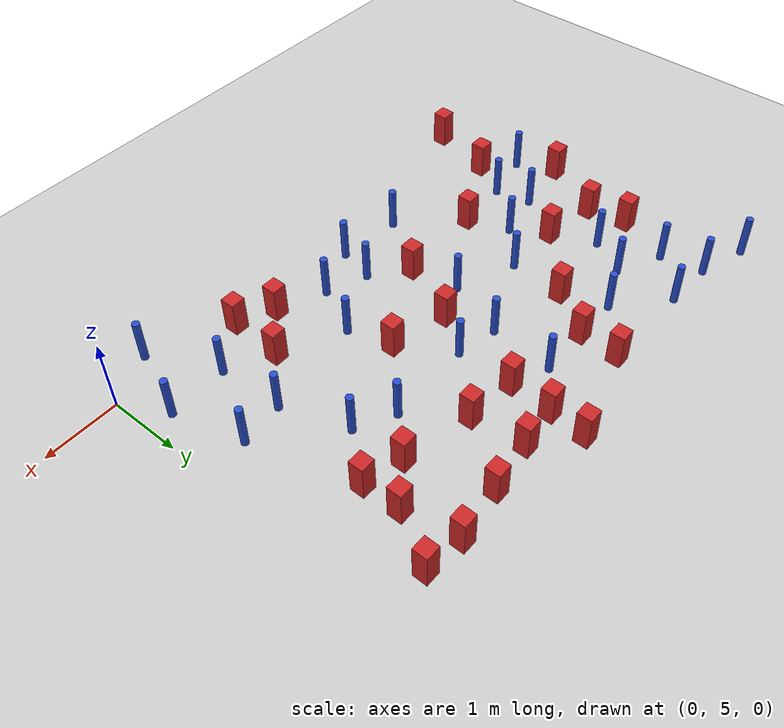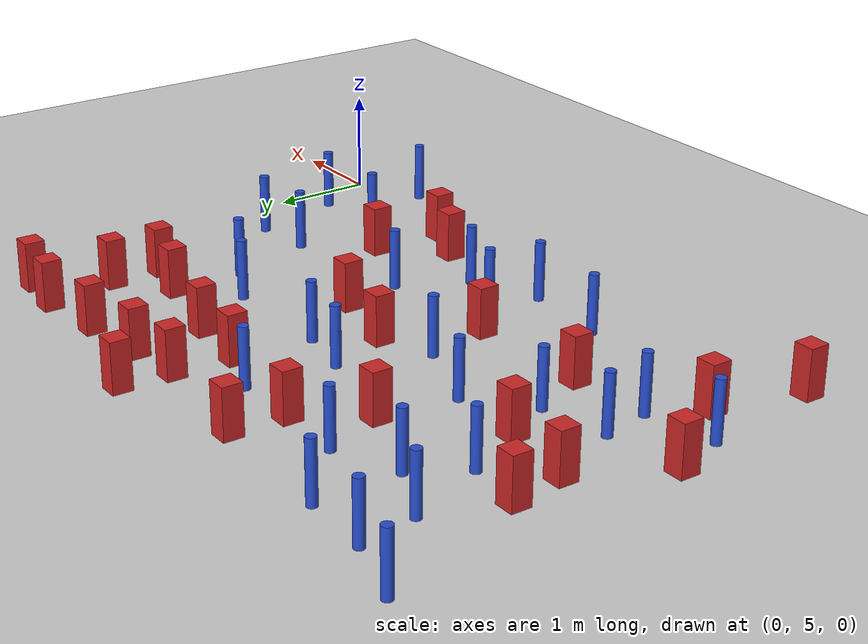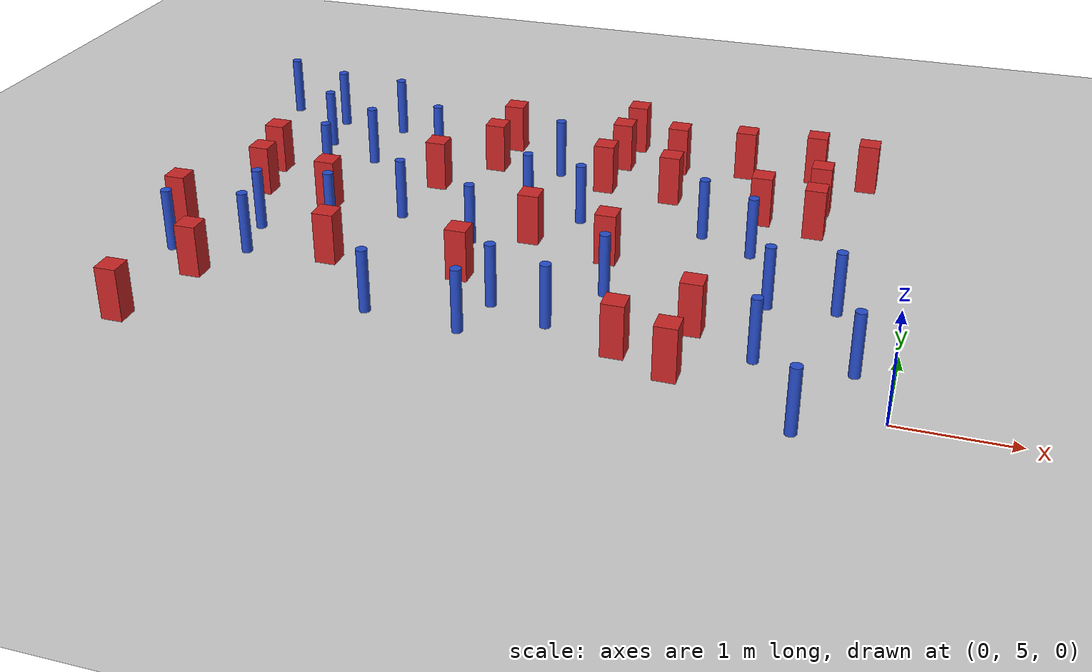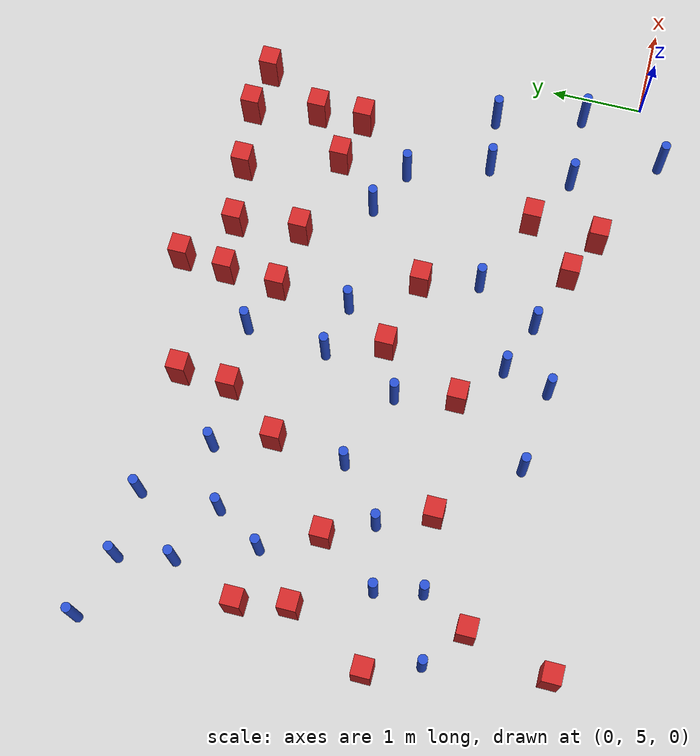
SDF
<sdf version="1.6">
 <world name="default">
  <model name="ground_plane">
   <static>1</static>
   <link name="link">
    <collision name="collision">
     <geometry><plane><normal>0 0 1</normal><size>100 100</size></plane></geometry>
     <surface><friction><ode><mu>100</mu><mu2>50</mu2></ode></friction></surface>
    </collision>
    <visual name="visual">
     <cast_shadows>0</cast_shadows>
     <geometry><plane><normal>0 0 1</normal><size>100 100</size></plane></geometry>
     <material>
      <ambient>1.0 1.0 1.0 1.0</ambient>
      <diffuse>0.8 0.8 0.8 1.0</diffuse>
      <specular>0.01 0.01 0.01 1.000000</specular>
     </material>
    </visual>
   </link>
  </model>
  <model name="pole_obstacle2">
   <static>true</static>
   <pose>-1.1636939648 6.49377656993 -3.09024884793e-07 -7.19054271912e-07 -2.11315075134e-07 -1.93935509265e-07</pose>
   <link name="link">
    <pose>0 0 0.3 0 -0 0</pose>
    <inertial>
     <mass>1</mass>
     <inertia><ixx>0.145833</ixx><ixy>0</ixy><ixz>0</ixz><iyy>0.145833</iyy><iyz>0</iyz><izz>0.125</izz></inertia>
    </inertial>
    <collision name="collision">
     <geometry><cylinder><radius>0.05</radius><length>.6</length></cylinder></geometry>
    </collision>
    <visual name="visual">
     <geometry><cylinder><radius>0.05</radius><length>.6</length></cylinder></geometry>
     <material>
      <script><name>Gazebo/Blue</name><uri>file://media/materials/scripts/gazebo.material</uri></script>
     </material>
    </visual>
   </link>
  </model>
  <model name="square_post_obstacle6">
   <static>true</static>
   <pose>-6.49289543125 7.902991326 -4.36207812815e-07 3.75137919937e-06 9.77721102514e-07 2.47381364184e-05</pose>
   <link name="link">
    <pose>0 0 0.25 0 -0 0</pose>
    <inertial>
     <mass>100</mass>
     <inertia>
      <ixx>0.166667</ixx>
      <ixy>0</ixy>
      <ixz>0</ixz>
      <iyy>0.166667</iyy>
      <iyz>0</iyz>
      <izz>0.166667</izz>
     </inertia>
    </inertial>
    <collision name="collision"><geometry><box><size>.2 .2 .5</size></box></geometry></collision>
    <visual name="visual">
     <geometry><box><size>.2 .2 .5</size></box></geometry>
     <material>
      <script><name>Gazebo/Red</name><uri>file://media/materials/scripts/gazebo.material</uri></script>
     </material>
    </visual>
   </link>
  </model>
  <model name="pole_obstacle9">
   <static>true</static>
   <pose>-5.62983167318 9.16247445387 -3.09024884793e-07 -7.19054271912e-07 -2.1131507513e-07 -1.93935509261e-07</pose>
   <link name="link">
    <pose>0 0 0.3 0 -0 0</pose>
    <inertial>
     <mass>1</mass>
     <inertia><ixx>0.145833</ixx><ixy>0</ixy><ixz>0</ixz><iyy>0.145833</iyy><iyz>0</iyz><izz>0.125</izz></inertia>
    </inertial>
    <collision name="collision">
     <geometry><cylinder><radius>0.05</radius><length>.6</length></cylinder></geometry>
    </collision>
    <visual name="visual">
     <geometry><cylinder><radius>0.05</radius><length>.6</length></cylinder></geometry>
     <material>
      <script><name>Gazebo/Blue</name><uri>file://media/materials/scripts/gazebo.material</uri></script>
     </material>
    </visual>
   </link>
  </model>
  <model name="square_post_obstacle15">
   <static>true</static>
   <pose>-3.0672144097 8.98723721834 -4.36207812815e-07 3.75137919937e-06 9.77721102514e-07 2.47381364184e-05</pose>
   <link name="link">
    <pose>0 0 0.25 0 -0 0</pose>
    <inertial>
     <mass>100</mass>
     <inertia>
      <ixx>0.166667</ixx>
      <ixy>0</ixy>
      <ixz>0</ixz>
      <iyy>0.166667</iyy>
      <iyz>0</iyz>
      <izz>0.166667</izz>
     </inertia>
    </inertial>
    <collision name="collision"><geometry><box><size>.2 .2 .5</size></box></geometry></collision>
    <visual name="visual">
     <geometry><box><size>.2 .2 .5</size></box></geometry>
     <material>
      <script><name>Gazebo/Red</name><uri>file://media/materials/scripts/gazebo.material</uri></script>
     </material>
    </visual>
   </link>
  </model>
  <model name="pole_obstacle25">
   <static>true</static>
   <pose>-2.89989605086 5.62652269784 -3.09024884793e-07 -7.19054271912e-07 -2.11315075134e-07 -1.93935509266e-07</pose>
   <link name="link">
    <pose>0 0 0.3 0 -0 0</pose>
    <inertial>
     <mass>1</mass>
     <inertia><ixx>0.145833</ixx><ixy>0</ixy><ixz>0</ixz><iyy>0.145833</iyy><iyz>0</iyz><izz>0.125</izz></inertia>
    </inertial>
    <collision name="collision">
     <geometry><cylinder><radius>0.05</radius><length>.6</length></cylinder></geometry>
    </collision>
    <visual name="visual">
     <geometry><cylinder><radius>0.05</radius><length>.6</length></cylinder></geometry>
     <material>
      <script><name>Gazebo/Blue</name><uri>file://media/materials/scripts/gazebo.material</uri></script>
     </material>
    </visual>
   </link>
  </model>
  <model name="square_post_obstacle25">
   <static>true</static>
   <pose>-0.586377763825 9.17148424783 -4.36207812815e-07 3.75137919937e-06 9.77721102514e-07 2.47381364184e-05</pose>
   <link name="link">
    <pose>0 0 0.25 0 -0 0</pose>
    <inertial>
     <mass>100</mass>
     <inertia>
      <ixx>0.166667</ixx>
      <ixy>0</ixy>
      <ixz>0</ixz>
      <iyy>0.166667</iyy>
      <iyz>0</iyz>
      <izz>0.166667</izz>
     </inertia>
    </inertial>
    <collision name="collision"><geometry><box><size>.2 .2 .5</size></box></geometry></collision>
    <visual name="visual">
     <geometry><box><size>.2 .2 .5</size></box></geometry>
     <material>
      <script><name>Gazebo/Red</name><uri>file://media/materials/scripts/gazebo.material</uri></script>
     </material>
    </visual>
   </link>
  </model>
  <model name="pole_obstacle40">
   <static>true</static>
   <pose>-2.5668011278 6.2961778245 -3.09024884793e-07 -7.19054271912e-07 -2.11315075134e-07 -1.93935509266e-07</pose>
   <link name="link">
    <pose>0 0 0.3 0 -0 0</pose>
    <inertial>
     <mass>1</mass>
     <inertia><ixx>0.145833</ixx><ixy>0</ixy><ixz>0</ixz><iyy>0.145833</iyy><iyz>0</iyz><izz>0.125</izz></inertia>
    </inertial>
    <collision name="collision">
     <geometry><cylinder><radius>0.05</radius><length>.6</length></cylinder></geometry>
    </collision>
    <visual name="visual">
     <geometry><cylinder><radius>0.05</radius><length>.6</length></cylinder></geometry>
     <material>
      <script><name>Gazebo/Blue</name><uri>file://media/materials/scripts/gazebo.material</uri></script>
     </material>
    </visual>
   </link>
  </model>
  <model name="square_post_obstacle34">
   <static>true</static>
   <pose>-0.969262403115 8.5101188159 -4.36207812815e-07 3.75137919937e-06 9.77721102514e-07 2.47381364184e-05</pose>
   <link name="link">
    <pose>0 0 0.25 0 -0 0</pose>
    <inertial>
     <mass>100</mass>
     <inertia>
      <ixx>0.166667</ixx>
      <ixy>0</ixy>
      <ixz>0</ixz>
      <iyy>0.166667</iyy>
      <iyz>0</iyz>
      <izz>0.166667</izz>
     </inertia>
    </inertial>
    <collision name="collision"><geometry><box><size>.2 .2 .5</size></box></geometry></collision>
    <visual name="visual">
     <geometry><box><size>.2 .2 .5</size></box></geometry>
     <material>
      <script><name>Gazebo/Red</name><uri>file://media/materials/scripts/gazebo.material</uri></script>
     </material>
    </visual>
   </link>
  </model>
  <model name="pole_obstacle52">
   <static>true</static>
   <pose>-5.38522458235 6.74010352743 -3.09024884793e-07 -7.19054271911e-07 -2.1131507516e-07 -1.93935509277e-07</pose>
   <link name="link">
    <pose>0 0 0.3 0 -0 0</pose>
    <inertial>
     <mass>1</mass>
     <inertia><ixx>0.145833</ixx><ixy>0</ixy><ixz>0</ixz><iyy>0.145833</iyy><iyz>0</iyz><izz>0.125</izz></inertia>
    </inertial>
    <collision name="collision">
     <geometry><cylinder><radius>0.05</radius><length>.6</length></cylinder></geometry>
    </collision>
    <visual name="visual">
     <geometry><cylinder><radius>0.05</radius><length>.6</length></cylinder></geometry>
     <material>
      <script><name>Gazebo/Blue</name><uri>file://media/materials/scripts/gazebo.material</uri></script>
     </material>
    </visual>
   </link>
  </model>
  <model name="pole_obstacle69">
   <static>true</static>
   <pose>-6.22485739289 8.61935832257 -3.09024884793e-07 -7.19054271912e-07 -2.1131507513e-07 -1.93935509261e-07</pose>
   <link name="link">
    <pose>0 0 0.3 0 -0 0</pose>
    <inertial>
     <mass>1</mass>
     <inertia><ixx>0.145833</ixx><ixy>0</ixy><ixz>0</ixz><iyy>0.145833</iyy><iyz>0</iyz><izz>0.125</izz></inertia>
    </inertial>
    <collision name="collision">
     <geometry><cylinder><radius>0.05</radius><length>.6</length></cylinder></geometry>
    </collision>
    <visual name="visual">
     <geometry><cylinder><radius>0.05</radius><length>.6</length></cylinder></geometry>
     <material>
      <script><name>Gazebo/Blue</name><uri>file://media/materials/scripts/gazebo.material</uri></script>
     </material>
    </visual>
   </link>
  </model>
  <model name="square_post_obstacle59">
   <static>true</static>
   <pose>-4.32279213672 8.58136387102 -4.36207812815e-07 3.75137919937e-06 9.77721102514e-07 2.47381364184e-05</pose>
   <link name="link">
    <pose>0 0 0.25 0 -0 0</pose>
    <inertial>
     <mass>100</mass>
     <inertia>
      <ixx>0.166667</ixx>
      <ixy>0</ixy>
      <ixz>0</ixz>
      <iyy>0.166667</iyy>
      <iyz>0</iyz>
      <izz>0.166667</izz>
     </inertia>
    </inertial>
    <collision name="collision"><geometry><box><size>.2 .2 .5</size></box></geometry></collision>
    <visual name="visual">
     <geometry><box><size>.2 .2 .5</size></box></geometry>
     <material>
      <script><name>Gazebo/Red</name><uri>file://media/materials/scripts/gazebo.material</uri></script>
     </material>
    </visual>
   </link>
  </model>
  <model name="pole_obstacle79">
   <static>true</static>
   <pose>-3.58506787334 5.33275245532 -3.09024884793e-07 -7.19054271912e-07 -2.11315075134e-07 -1.93935509266e-07</pose>
   <link name="link">
    <pose>0 0 0.3 0 -0 0</pose>
    <inertial>
     <mass>1</mass>
     <inertia><ixx>0.145833</ixx><ixy>0</ixy><ixz>0</ixz><iyy>0.145833</iyy><iyz>0</iyz><izz>0.125</izz></inertia>
    </inertial>
    <collision name="collision">
     <geometry><cylinder><radius>0.05</radius><length>.6</length></cylinder></geometry>
    </collision>
    <visual name="visual">
     <geometry><cylinder><radius>0.05</radius><length>.6</length></cylinder></geometry>
     <material>
      <script><name>Gazebo/Blue</name><uri>file://media/materials/scripts/gazebo.material</uri></script>
     </material>
    </visual>
   </link>
  </model>
  <model name="pole_obstacle88">
   <static>true</static>
   <pose>-0.688275233049 4.68017163884 -3.09024884793e-07 -7.19054271912e-07 -2.11315075129e-07 -1.93935509261e-07</pose>
   <link name="link">
    <pose>0 0 0.3 0 -0 0</pose>
    <inertial>
     <mass>1</mass>
     <inertia><ixx>0.145833</ixx><ixy>0</ixy><ixz>0</ixz><iyy>0.145833</iyy><iyz>0</iyz><izz>0.125</izz></inertia>
    </inertial>
    <collision name="collision">
     <geometry><cylinder><radius>0.05</radius><length>.6</length></cylinder></geometry>
    </collision>
    <visual name="visual">
     <geometry><cylinder><radius>0.05</radius><length>.6</length></cylinder></geometry>
     <material>
      <script><name>Gazebo/Blue</name><uri>file://media/materials/scripts/gazebo.material</uri></script>
     </material>
    </visual>
   </link>
  </model>
  <model name="square_post_obstacle78">
   <static>true</static>
   <pose>-6.21956855464 5.61123300974 -4.36207812815e-07 3.75137919937e-06 9.77721102514e-07 2.47381364184e-05</pose>
   <link name="link">
    <pose>0 0 0.25 0 -0 0</pose>
    <inertial>
     <mass>100</mass>
     <inertia>
      <ixx>0.166667</ixx>
      <ixy>0</ixy>
      <ixz>0</ixz>
      <iyy>0.166667</iyy>
      <iyz>0</iyz>
      <izz>0.166667</izz>
     </inertia>
    </inertial>
    <collision name="collision"><geometry><box><size>.2 .2 .5</size></box></geometry></collision>
    <visual name="visual">
     <geometry><box><size>.2 .2 .5</size></box></geometry>
     <material>
      <script><name>Gazebo/Red</name><uri>file://media/materials/scripts/gazebo.material</uri></script>
     </material>
    </visual>
   </link>
  </model>
  <model name="pole_obstacle95">
   <static>true</static>
   <pose>-1.45871466556 7.37641480322 -3.09024884793e-07 -7.19054271912e-07 -2.11315075134e-07 -1.93935509265e-07</pose>
   <link name="link">
    <pose>0 0 0.3 0 -0 0</pose>
    <inertial>
     <mass>1</mass>
     <inertia><ixx>0.145833</ixx><ixy>0</ixy><ixz>0</ixz><iyy>0.145833</iyy><iyz>0</iyz><izz>0.125</izz></inertia>
    </inertial>
    <collision name="collision">
     <geometry><cylinder><radius>0.05</radius><length>.6</length></cylinder></geometry>
    </collision>
    <visual name="visual">
     <geometry><cylinder><radius>0.05</radius><length>.6</length></cylinder></geometry>
     <material>
      <script><name>Gazebo/Blue</name><uri>file://media/materials/scripts/gazebo.material</uri></script>
     </material>
    </visual>
   </link>
  </model>
  <model name="square_post_obstacle88">
   <static>true</static>
   <pose>-2.70681723239 6.9216642255 -4.36207812815e-07 3.75137919937e-06 9.77721102514e-07 2.47381364184e-05</pose>
   <link name="link">
    <pose>0 0 0.25 0 -0 0</pose>
    <inertial>
     <mass>100</mass>
     <inertia>
      <ixx>0.166667</ixx>
      <ixy>0</ixy>
      <ixz>0</ixz>
      <iyy>0.166667</iyy>
      <iyz>0</iyz>
      <izz>0.166667</izz>
     </inertia>
    </inertial>
    <collision name="collision"><geometry><box><size>.2 .2 .5</size></box></geometry></collision>
    <visual name="visual">
     <geometry><box><size>.2 .2 .5</size></box></geometry>
     <material>
      <script><name>Gazebo/Red</name><uri>file://media/materials/scripts/gazebo.material</uri></script>
     </material>
    </visual>
   </link>
  </model>
  <model name="pole_obstacle96">
   <static>true</static>
   <pose>-3.6386214837 8.58833012479 -3.09024884848e-07 -7.19054271902e-07 -2.11315075199e-07 -1.93935509286e-07</pose>
   <link name="link">
    <pose>0 0 0.3 0 -0 0</pose>
    <inertial>
     <mass>1</mass>
     <inertia><ixx>0.145833</ixx><ixy>0</ixy><ixz>0</ixz><iyy>0.145833</iyy><iyz>0</iyz><izz>0.125</izz></inertia>
    </inertial>
    <collision name="collision">
     <geometry><cylinder><radius>0.05</radius><length>.6</length></cylinder></geometry>
    </collision>
    <visual name="visual">
     <geometry><cylinder><radius>0.05</radius><length>.6</length></cylinder></geometry>
     <material>
      <script><name>Gazebo/Blue</name><uri>file://media/materials/scripts/gazebo.material</uri></script>
     </material>
    </visual>
   </link>
  </model>
  <model name="square_post_obstacle90">
   <static>true</static>
   <pose>-1.81294295936 9.14454267821 -4.36207812815e-07 3.75137919937e-06 9.77721102514e-07 2.47381364184e-05</pose>
   <link name="link">
    <pose>0 0 0.25 0 -0 0</pose>
    <inertial>
     <mass>100</mass>
     <inertia>
      <ixx>0.166667</ixx>
      <ixy>0</ixy>
      <ixz>0</ixz>
      <iyy>0.166667</iyy>
      <iyz>0</iyz>
      <izz>0.166667</izz>
     </inertia>
    </inertial>
    <collision name="collision"><geometry><box><size>.2 .2 .5</size></box></geometry></collision>
    <visual name="visual">
     <geometry><box><size>.2 .2 .5</size></box></geometry>
     <material>
      <script><name>Gazebo/Red</name><uri>file://media/materials/scripts/gazebo.material</uri></script>
     </material>
    </visual>
   </link>
  </model>
  <model name="square_post_obstacle97">
   <static>true</static>
   <pose>-6.45820704529 4.72147405404 -4.36207812815e-07 3.75137919937e-06 9.77721102514e-07 2.47381364184e-05</pose>
   <link name="link">
    <pose>0 0 0.25 0 -0 0</pose>
    <inertial>
     <mass>100</mass>
     <inertia>
      <ixx>0.166667</ixx>
      <ixy>0</ixy>
      <ixz>0</ixz>
      <iyy>0.166667</iyy>
      <iyz>0</iyz>
      <izz>0.166667</izz>
     </inertia>
    </inertial>
    <collision name="collision"><geometry><box><size>.2 .2 .5</size></box></geometry></collision>
    <visual name="visual">
     <geometry><box><size>.2 .2 .5</size></box></geometry>
     <material>
      <script><name>Gazebo/Red</name><uri>file://media/materials/scripts/gazebo.material</uri></script>
     </material>
    </visual>
   </link>
  </model>
  <model name="pole_obstacle104">
   <static>true</static>
   <pose>-1.96032359742 7.63489741848 -3.09024884793e-07 -7.19054271912e-07 -2.1131507513e-07 -1.93935509262e-07</pose>
   <link name="link">
    <pose>0 0 0.3 0 -0 0</pose>
    <inertial>
     <mass>1</mass>
     <inertia><ixx>0.145833</ixx><ixy>0</ixy><ixz>0</ixz><iyy>0.145833</iyy><iyz>0</iyz><izz>0.125</izz></inertia>
    </inertial>
    <collision name="collision">
     <geometry><cylinder><radius>0.05</radius><length>.6</length></cylinder></geometry>
    </collision>
    <visual name="visual">
     <geometry><cylinder><radius>0.05</radius><length>.6</length></cylinder></geometry>
     <material>
      <script><name>Gazebo/Blue</name><uri>file://media/materials/scripts/gazebo.material</uri></script>
     </material>
    </visual>
   </link>
  </model>
  <model name="pole_obstacle108">
   <static>true</static>
   <pose>-6.05371493826 6.59771029976 -3.09024884793e-07 -7.19054271911e-07 -2.1131507516e-07 -1.93935509277e-07</pose>
   <link name="link">
    <pose>0 0 0.3 0 -0 0</pose>
    <inertial>
     <mass>1</mass>
     <inertia><ixx>0.145833</ixx><ixy>0</ixy><ixz>0</ixz><iyy>0.145833</iyy><iyz>0</iyz><izz>0.125</izz></inertia>
    </inertial>
    <collision name="collision">
     <geometry><cylinder><radius>0.05</radius><length>.6</length></cylinder></geometry>
    </collision>
    <visual name="visual">
     <geometry><cylinder><radius>0.05</radius><length>.6</length></cylinder></geometry>
     <material>
      <script><name>Gazebo/Blue</name><uri>file://media/materials/scripts/gazebo.material</uri></script>
     </material>
    </visual>
   </link>
  </model>
  <model name="pole_obstacle110">
   <static>true</static>
   <pose>-4.02476999885 6.88670873852 -3.09024884793e-07 -7.19054271911e-07 -2.11315075165e-07 -1.9393550928e-07</pose>
   <link name="link">
    <pose>0 0 0.3 0 -0 0</pose>
    <inertial>
     <mass>1</mass>
     <inertia><ixx>0.145833</ixx><ixy>0</ixy><ixz>0</ixz><iyy>0.145833</iyy><iyz>0</iyz><izz>0.125</izz></inertia>
    </inertial>
    <collision name="collision">
     <geometry><cylinder><radius>0.05</radius><length>.6</length></cylinder></geometry>
    </collision>
    <visual name="visual">
     <geometry><cylinder><radius>0.05</radius><length>.6</length></cylinder></geometry>
     <material>
      <script><name>Gazebo/Blue</name><uri>file://media/materials/scripts/gazebo.material</uri></script>
     </material>
    </visual>
   </link>
  </model>
  <model name="square_post_obstacle103">
   <static>true</static>
   <pose>-1.75343530101 5.17776460868 -4.36207812815e-07 3.75137919937e-06 9.77721102514e-07 2.47381364184e-05</pose>
   <link name="link">
    <pose>0 0 0.25 0 -0 0</pose>
    <inertial>
     <mass>100</mass>
     <inertia>
      <ixx>0.166667</ixx>
      <ixy>0</ixy>
      <ixz>0</ixz>
      <iyy>0.166667</iyy>
      <iyz>0</iyz>
      <izz>0.166667</izz>
     </inertia>
    </inertial>
    <collision name="collision"><geometry><box><size>.2 .2 .5</size></box></geometry></collision>
    <visual name="visual">
     <geometry><box><size>.2 .2 .5</size></box></geometry>
     <material>
      <script><name>Gazebo/Red</name><uri>file://media/materials/scripts/gazebo.material</uri></script>
     </material>
    </visual>
   </link>
  </model>
  <model name="square_post_obstacle108">
   <static>true</static>
   <pose>-3.11375692529 8.39990371966 -4.36207812815e-07 3.75137919937e-06 9.77721102514e-07 2.47381364184e-05</pose>
   <link name="link">
    <pose>0 0 0.25 0 -0 0</pose>
    <inertial>
     <mass>100</mass>
     <inertia>
      <ixx>0.166667</ixx>
      <ixy>0</ixy>
      <ixz>0</ixz>
      <iyy>0.166667</iyy>
      <iyz>0</iyz>
      <izz>0.166667</izz>
     </inertia>
    </inertial>
    <collision name="collision"><geometry><box><size>.2 .2 .5</size></box></geometry></collision>
    <visual name="visual">
     <geometry><box><size>.2 .2 .5</size></box></geometry>
     <material>
      <script><name>Gazebo/Red</name><uri>file://media/materials/scripts/gazebo.material</uri></script>
     </material>
    </visual>
   </link>
  </model>
  <model name="square_post_obstacle116">
   <static>true</static>
   <pose>-1.48544516305 8.12152211852 -4.36207812815e-07 3.75137919937e-06 9.77721102514e-07 2.47381364184e-05</pose>
   <link name="link">
    <pose>0 0 0.25 0 -0 0</pose>
    <inertial>
     <mass>100</mass>
     <inertia>
      <ixx>0.166667</ixx>
      <ixy>0</ixy>
      <ixz>0</ixz>
      <iyy>0.166667</iyy>
      <iyz>0</iyz>
      <izz>0.166667</izz>
     </inertia>
    </inertial>
    <collision name="collision"><geometry><box><size>.2 .2 .5</size></box></geometry></collision>
    <visual name="visual">
     <geometry><box><size>.2 .2 .5</size></box></geometry>
     <material>
      <script><name>Gazebo/Red</name><uri>file://media/materials/scripts/gazebo.material</uri></script>
     </material>
    </visual>
   </link>
  </model>
  <model name="square_post_obstacle121">
   <static>true</static>
   <pose>-3.49860216168 7.10704009538 -4.36207812815e-07 3.75137919937e-06 9.77721102514e-07 2.47381364184e-05</pose>
   <link name="link">
    <pose>0 0 0.25 0 -0 0</pose>
    <inertial>
     <mass>100</mass>
     <inertia>
      <ixx>0.166667</ixx>
      <ixy>0</ixy>
      <ixz>0</ixz>
      <iyy>0.166667</iyy>
      <iyz>0</iyz>
      <izz>0.166667</izz>
     </inertia>
    </inertial>
    <collision name="collision"><geometry><box><size>.2 .2 .5</size></box></geometry></collision>
    <visual name="visual">
     <geometry><box><size>.2 .2 .5</size></box></geometry>
     <material>
      <script><name>Gazebo/Red</name><uri>file://media/materials/scripts/gazebo.material</uri></script>
     </material>
    </visual>
   </link>
  </model>
  <model name="pole_obstacle125">
   <static>true</static>
   <pose>-4.84493598861 7.20744264739 -3.09024884793e-07 -7.19054271911e-07 -2.1131507516e-07 -1.93935509277e-07</pose>
   <link name="link">
    <pose>0 0 0.3 0 -0 0</pose>
    <inertial>
     <mass>1</mass>
     <inertia><ixx>0.145833</ixx><ixy>0</ixy><ixz>0</ixz><iyy>0.145833</iyy><iyz>0</iyz><izz>0.125</izz></inertia>
    </inertial>
    <collision name="collision">
     <geometry><cylinder><radius>0.05</radius><length>.6</length></cylinder></geometry>
    </collision>
    <visual name="visual">
     <geometry><cylinder><radius>0.05</radius><length>.6</length></cylinder></geometry>
     <material>
      <script><name>Gazebo/Blue</name><uri>file://media/materials/scripts/gazebo.material</uri></script>
     </material>
    </visual>
   </link>
  </model>
  <model name="pole_obstacle127">
   <static>true</static>
   <pose>-1.12874595569 5.5929155014 -3.09024884793e-07 -7.19054271912e-07 -2.11315075134e-07 -1.93935509265e-07</pose>
   <link name="link">
    <pose>0 0 0.3 0 -0 0</pose>
    <inertial>
     <mass>1</mass>
     <inertia><ixx>0.145833</ixx><ixy>0</ixy><ixz>0</ixz><iyy>0.145833</iyy><iyz>0</iyz><izz>0.125</izz></inertia>
    </inertial>
    <collision name="collision">
     <geometry><cylinder><radius>0.05</radius><length>.6</length></cylinder></geometry>
    </collision>
    <visual name="visual">
     <geometry><cylinder><radius>0.05</radius><length>.6</length></cylinder></geometry>
     <material>
      <script><name>Gazebo/Blue</name><uri>file://media/materials/scripts/gazebo.material</uri></script>
     </material>
    </visual>
   </link>
  </model>
  <model name="square_post_obstacle124">
   <static>true</static>
   <pose>-4.29217820584 9.12824278935 -4.36207812815e-07 3.75137919937e-06 9.77721102514e-07 2.47381364184e-05</pose>
   <link name="link">
    <pose>0 0 0.25 0 -0 0</pose>
    <inertial>
     <mass>100</mass>
     <inertia>
      <ixx>0.166667</ixx>
      <ixy>0</ixy>
      <ixz>0</ixz>
      <iyy>0.166667</iyy>
      <iyz>0</iyz>
      <izz>0.166667</izz>
     </inertia>
    </inertial>
    <collision name="collision"><geometry><box><size>.2 .2 .5</size></box></geometry></collision>
    <visual name="visual">
     <geometry><box><size>.2 .2 .5</size></box></geometry>
     <material>
      <script><name>Gazebo/Red</name><uri>file://media/materials/scripts/gazebo.material</uri></script>
     </material>
    </visual>
   </link>
  </model>
  <model name="pole_obstacle129">
   <static>true</static>
   <pose>-5.61423801472 8.32073306683 -3.09024884793e-07 -7.19054271912e-07 -2.1131507513e-07 -1.93935509261e-07</pose>
   <link name="link">
    <pose>0 0 0.3 0 -0 0</pose>
    <inertial>
     <mass>1</mass>
     <inertia><ixx>0.145833</ixx><ixy>0</ixy><ixz>0</ixz><iyy>0.145833</iyy><iyz>0</iyz><izz>0.125</izz></inertia>
    </inertial>
    <collision name="collision">
     <geometry><cylinder><radius>0.05</radius><length>.6</length></cylinder></geometry>
    </collision>
    <visual name="visual">
     <geometry><cylinder><radius>0.05</radius><length>.6</length></cylinder></geometry>
     <material>
      <script><name>Gazebo/Blue</name><uri>file://media/materials/scripts/gazebo.material</uri></script>
     </material>
    </visual>
   </link>
  </model>
  <model name="square_post_obstacle126">
   <static>true</static>
   <pose>-5.62651489807 7.23626387402 -4.36207812815e-07 3.75137919937e-06 9.77721102514e-07 2.47381364184e-05</pose>
   <link name="link">
    <pose>0 0 0.25 0 -0 0</pose>
    <inertial>
     <mass>100</mass>
     <inertia>
      <ixx>0.166667</ixx>
      <ixy>0</ixy>
      <ixz>0</ixz>
      <iyy>0.166667</iyy>
      <iyz>0</iyz>
      <izz>0.166667</izz>
     </inertia>
    </inertial>
    <collision name="collision"><geometry><box><size>.2 .2 .5</size></box></geometry></collision>
    <visual name="visual">
     <geometry><box><size>.2 .2 .5</size></box></geometry>
     <material>
      <script><name>Gazebo/Red</name><uri>file://media/materials/scripts/gazebo.material</uri></script>
     </material>
    </visual>
   </link>
  </model>
  <model name="pole_obstacle134">
   <static>true</static>
   <pose>-4.98069587195 8.5823416448 -3.09024884793e-07 -7.19054271912e-07 -2.1131507513e-07 -1.93935509261e-07</pose>
   <link name="link">
    <pose>0 0 0.3 0 -0 0</pose>
    <inertial>
     <mass>1</mass>
     <inertia><ixx>0.145833</ixx><ixy>0</ixy><ixz>0</ixz><iyy>0.145833</iyy><iyz>0</iyz><izz>0.125</izz></inertia>
    </inertial>
    <collision name="collision">
     <geometry><cylinder><radius>0.05</radius><length>.6</length></cylinder></geometry>
    </collision>
    <visual name="visual">
     <geometry><cylinder><radius>0.05</radius><length>.6</length></cylinder></geometry>
     <material>
      <script><name>Gazebo/Blue</name><uri>file://media/materials/scripts/gazebo.material</uri></script>
     </material>
    </visual>
   </link>
  </model>
  <model name="pole_obstacle138">
   <static>true</static>
   <pose>-3.71609996942 7.71304588813 -3.09024884793e-07 -7.19054271912e-07 -2.11315075134e-07 -1.93935509266e-07</pose>
   <link name="link">
    <pose>0 0 0.3 0 -0 0</pose>
    <inertial>
     <mass>1</mass>
     <inertia><ixx>0.145833</ixx><ixy>0</ixy><ixz>0</ixz><iyy>0.145833</iyy><iyz>0</iyz><izz>0.125</izz></inertia>
    </inertial>
    <collision name="collision">
     <geometry><cylinder><radius>0.05</radius><length>.6</length></cylinder></geometry>
    </collision>
    <visual name="visual">
     <geometry><cylinder><radius>0.05</radius><length>.6</length></cylinder></geometry>
     <material>
      <script><name>Gazebo/Blue</name><uri>file://media/materials/scripts/gazebo.material</uri></script>
     </material>
    </visual>
   </link>
  </model>
  <model name="square_post_obstacle139">
   <static>true</static>
   <pose>-2.42696473083 8.33001930898 -4.36207812815e-07 3.75137919937e-06 9.77721102514e-07 2.47381364184e-05</pose>
   <link name="link">
    <pose>0 0 0.25 0 -0 0</pose>
    <inertial>
     <mass>100</mass>
     <inertia>
      <ixx>0.166667</ixx>
      <ixy>0</ixy>
      <ixz>0</ixz>
      <iyy>0.166667</iyy>
      <iyz>0</iyz>
      <izz>0.166667</izz>
     </inertia>
    </inertial>
    <collision name="collision"><geometry><box><size>.2 .2 .5</size></box></geometry></collision>
    <visual name="visual">
     <geometry><box><size>.2 .2 .5</size></box></geometry>
     <material>
      <script><name>Gazebo/Red</name><uri>file://media/materials/scripts/gazebo.material</uri></script>
     </material>
    </visual>
   </link>
  </model>
  <model name="pole_obstacle145">
   <static>true</static>
   <pose>-3.45660491171 5.83047954437 -3.09024884848e-07 -7.19054271903e-07 -2.11315075193e-07 -1.93935509285e-07</pose>
   <link name="link">
    <pose>0 0 0.3 0 -0 0</pose>
    <inertial>
     <mass>1</mass>
     <inertia><ixx>0.145833</ixx><ixy>0</ixy><ixz>0</ixz><iyy>0.145833</iyy><iyz>0</iyz><izz>0.125</izz></inertia>
    </inertial>
    <collision name="collision">
     <geometry><cylinder><radius>0.05</radius><length>.6</length></cylinder></geometry>
    </collision>
    <visual name="visual">
     <geometry><cylinder><radius>0.05</radius><length>.6</length></cylinder></geometry>
     <material>
      <script><name>Gazebo/Blue</name><uri>file://media/materials/scripts/gazebo.material</uri></script>
     </material>
    </visual>
   </link>
  </model>
  <model name="square_post_obstacle140">
   <static>true</static>
   <pose>-5.15416222279 6.19077675005 -4.36207812815e-07 3.75137919937e-06 9.77721102514e-07 2.47381364184e-05</pose>
   <link name="link">
    <pose>0 0 0.25 0 -0 0</pose>
    <inertial>
     <mass>100</mass>
     <inertia>
      <ixx>0.166667</ixx>
      <ixy>0</ixy>
      <ixz>0</ixz>
      <iyy>0.166667</iyy>
      <iyz>0</iyz>
      <izz>0.166667</izz>
     </inertia>
    </inertial>
    <collision name="collision"><geometry><box><size>.2 .2 .5</size></box></geometry></collision>
    <visual name="visual">
     <geometry><box><size>.2 .2 .5</size></box></geometry>
     <material>
      <script><name>Gazebo/Red</name><uri>file://media/materials/scripts/gazebo.material</uri></script>
     </material>
    </visual>
   </link>
  </model>
  <model name="square_post_obstacle148">
   <static>true</static>
   <pose>-0.958305662529 7.99162861199 -4.36207812815e-07 3.75137919937e-06 9.77721102514e-07 2.47381364184e-05</pose>
   <link name="link">
    <pose>0 0 0.25 0 -0 0</pose>
    <inertial>
     <mass>100</mass>
     <inertia>
      <ixx>0.166667</ixx>
      <ixy>0</ixy>
      <ixz>0</ixz>
      <iyy>0.166667</iyy>
      <iyz>0</iyz>
      <izz>0.166667</izz>
     </inertia>
    </inertial>
    <collision name="collision"><geometry><box><size>.2 .2 .5</size></box></geometry></collision>
    <visual name="visual">
     <geometry><box><size>.2 .2 .5</size></box></geometry>
     <material>
      <script><name>Gazebo/Red</name><uri>file://media/materials/scripts/gazebo.material</uri></script>
     </material>
    </visual>
   </link>
  </model>
  <model name="pole_obstacle153">
   <static>true</static>
   <pose>-3.15035046833 7.60275059672 -3.09024884848e-07 -7.19054271903e-07 -2.11315075193e-07 -1.93935509285e-07</pose>
   <link name="link">
    <pose>0 0 0.3 0 -0 0</pose>
    <inertial>
     <mass>1</mass>
     <inertia><ixx>0.145833</ixx><ixy>0</ixy><ixz>0</ixz><iyy>0.145833</iyy><iyz>0</iyz><izz>0.125</izz></inertia>
    </inertial>
    <collision name="collision">
     <geometry><cylinder><radius>0.05</radius><length>.6</length></cylinder></geometry>
    </collision>
    <visual name="visual">
     <geometry><cylinder><radius>0.05</radius><length>.6</length></cylinder></geometry>
     <material>
      <script><name>Gazebo/Blue</name><uri>file://media/materials/scripts/gazebo.material</uri></script>
     </material>
    </visual>
   </link>
  </model>
  <model name="pole_obstacle155">
   <static>true</static>
   <pose>-6.32885814705 9.19513918449 -3.09024884793e-07 -7.19054271912e-07 -2.1131507513e-07 -1.93935509261e-07</pose>
   <link name="link">
    <pose>0 0 0.3 0 -0 0</pose>
    <inertial>
     <mass>1</mass>
     <inertia><ixx>0.145833</ixx><ixy>0</ixy><ixz>0</ixz><iyy>0.145833</iyy><iyz>0</iyz><izz>0.125</izz></inertia>
    </inertial>
    <collision name="collision">
     <geometry><cylinder><radius>0.05</radius><length>.6</length></cylinder></geometry>
    </collision>
    <visual name="visual">
     <geometry><cylinder><radius>0.05</radius><length>.6</length></cylinder></geometry>
     <material>
      <script><name>Gazebo/Blue</name><uri>file://media/materials/scripts/gazebo.material</uri></script>
     </material>
    </visual>
   </link>
  </model>
  <model name="square_post_obstacle152">
   <static>true</static>
   <pose>-1.70692539413 5.91820301468 -4.36207812815e-07 3.75137919937e-06 9.77721102514e-07 2.47381364184e-05</pose>
   <link name="link">
    <pose>0 0 0.25 0 -0 0</pose>
    <inertial>
     <mass>100</mass>
     <inertia>
      <ixx>0.166667</ixx>
      <ixy>0</ixy>
      <ixz>0</ixz>
      <iyy>0.166667</iyy>
      <iyz>0</iyz>
      <izz>0.166667</izz>
     </inertia>
    </inertial>
    <collision name="collision"><geometry><box><size>.2 .2 .5</size></box></geometry></collision>
    <visual name="visual">
     <geometry><box><size>.2 .2 .5</size></box></geometry>
     <material>
      <script><name>Gazebo/Red</name><uri>file://media/materials/scripts/gazebo.material</uri></script>
     </material>
    </visual>
   </link>
  </model>
  <model name="pole_obstacle160">
   <static>true</static>
   <pose>-6.6460422575 5.95704955752 -3.09024884793e-07 -7.19054271911e-07 -2.1131507516e-07 -1.93935509277e-07</pose>
   <link name="link">
    <pose>0 0 0.3 0 -0 0</pose>
    <inertial>
     <mass>1</mass>
     <inertia><ixx>0.145833</ixx><ixy>0</ixy><ixz>0</ixz><iyy>0.145833</iyy><iyz>0</iyz><izz>0.125</izz></inertia>
    </inertial>
    <collision name="collision">
     <geometry><cylinder><radius>0.05</radius><length>.6</length></cylinder></geometry>
    </collision>
    <visual name="visual">
     <geometry><cylinder><radius>0.05</radius><length>.6</length></cylinder></geometry>
     <material>
      <script><name>Gazebo/Blue</name><uri>file://media/materials/scripts/gazebo.material</uri></script>
     </material>
    </visual>
   </link>
  </model>
  <model name="square_post_obstacle156">
   <static>true</static>
   <pose>-4.75307223829 7.98685351804 -4.36207812815e-07 3.75137919937e-06 9.77721102514e-07 2.47381364184e-05</pose>
   <link name="link">
    <pose>0 0 0.25 0 -0 0</pose>
    <inertial>
     <mass>100</mass>
     <inertia>
      <ixx>0.166667</ixx>
      <ixy>0</ixy>
      <ixz>0</ixz>
      <iyy>0.166667</iyy>
      <iyz>0</iyz>
      <izz>0.166667</izz>
     </inertia>
    </inertial>
    <collision name="collision"><geometry><box><size>.2 .2 .5</size></box></geometry></collision>
    <visual name="visual">
     <geometry><box><size>.2 .2 .5</size></box></geometry>
     <material>
      <script><name>Gazebo/Red</name><uri>file://media/materials/scripts/gazebo.material</uri></script>
     </material>
    </visual>
   </link>
  </model>
  <model name="square_post_obstacle160">
   <static>true</static>
   <pose>-6.8393491578 6.50588038459 -4.36207812815e-07 3.75137919937e-06 9.77721102514e-07 2.47381364184e-05</pose>
   <link name="link">
    <pose>0 0 0.25 0 -0 0</pose>
    <inertial>
     <mass>100</mass>
     <inertia>
      <ixx>0.166667</ixx>
      <ixy>0</ixy>
      <ixz>0</ixz>
      <iyy>0.166667</iyy>
      <iyz>0</iyz>
      <izz>0.166667</izz>
     </inertia>
    </inertial>
    <collision name="collision"><geometry><box><size>.2 .2 .5</size></box></geometry></collision>
    <visual name="visual">
     <geometry><box><size>.2 .2 .5</size></box></geometry>
     <material>
      <script><name>Gazebo/Red</name><uri>file://media/materials/scripts/gazebo.material</uri></script>
     </material>
    </visual>
   </link>
  </model>
  <model name="pole_obstacle168">
   <static>true</static>
   <pose>-0.568810162399 6.55825034691 -3.09024884793e-07 -7.19054271912e-07 -2.11315075129e-07 -1.93935509261e-07</pose>
   <link name="link">
    <pose>0 0 0.3 0 -0 0</pose>
    <inertial>
     <mass>1</mass>
     <inertia><ixx>0.145833</ixx><ixy>0</ixy><ixz>0</ixz><iyy>0.145833</iyy><iyz>0</iyz><izz>0.125</izz></inertia>
    </inertial>
    <collision name="collision">
     <geometry><cylinder><radius>0.05</radius><length>.6</length></cylinder></geometry>
    </collision>
    <visual name="visual">
     <geometry><cylinder><radius>0.05</radius><length>.6</length></cylinder></geometry>
     <material>
      <script><name>Gazebo/Blue</name><uri>file://media/materials/scripts/gazebo.material</uri></script>
     </material>
    </visual>
   </link>
  </model>
  <model name="square_post_obstacle168">
   <static>true</static>
   <pose>-3.89612030402 6.24117873689 -4.36207812815e-07 3.75137919937e-06 9.77721102514e-07 2.47381364184e-05</pose>
   <link name="link">
    <pose>0 0 0.25 0 -0 0</pose>
    <inertial>
     <mass>100</mass>
     <inertia>
      <ixx>0.166667</ixx>
      <ixy>0</ixy>
      <ixz>0</ixz>
      <iyy>0.166667</iyy>
      <iyz>0</iyz>
      <izz>0.166667</izz>
     </inertia>
    </inertial>
    <collision name="collision"><geometry><box><size>.2 .2 .5</size></box></geometry></collision>
    <visual name="visual">
     <geometry><box><size>.2 .2 .5</size></box></geometry>
     <material>
      <script><name>Gazebo/Red</name><uri>file://media/materials/scripts/gazebo.material</uri></script>
     </material>
    </visual>
   </link>
  </model>
  <model name="pole_obstacle170">
   <static>true</static>
   <pose>-4.46473498533 5.41871343945 -3.09024884793e-07 -7.19054271911e-07 -2.1131507516e-07 -1.93935509277e-07</pose>
   <link name="link">
    <pose>0 0 0.3 0 -0 0</pose>
    <inertial>
     <mass>1</mass>
     <inertia><ixx>0.145833</ixx><ixy>0</ixy><ixz>0</ixz><iyy>0.145833</iyy><iyz>0</iyz><izz>0.125</izz></inertia>
    </inertial>
    <collision name="collision">
     <geometry><cylinder><radius>0.05</radius><length>.6</length></cylinder></geometry>
    </collision>
    <visual name="visual">
     <geometry><cylinder><radius>0.05</radius><length>.6</length></cylinder></geometry>
     <material>
      <script><name>Gazebo/Blue</name><uri>file://media/materials/scripts/gazebo.material</uri></script>
     </material>
    </visual>
   </link>
  </model>
  <model name="pole_obstacle171">
   <static>true</static>
   <pose>-6.99791180692 9.40511679246 -3.09024884793e-07 -7.19054271912e-07 -2.1131507513e-07 -1.93935509261e-07</pose>
   <link name="link">
    <pose>0 0 0.3 0 -0 0</pose>
    <inertial>
     <mass>1</mass>
     <inertia><ixx>0.145833</ixx><ixy>0</ixy><ixz>0</ixz><iyy>0.145833</iyy><iyz>0</iyz><izz>0.125</izz></inertia>
    </inertial>
    <collision name="collision">
     <geometry><cylinder><radius>0.05</radius><length>.6</length></cylinder></geometry>
    </collision>
    <visual name="visual">
     <geometry><cylinder><radius>0.05</radius><length>.6</length></cylinder></geometry>
     <material>
      <script><name>Gazebo/Blue</name><uri>file://media/materials/scripts/gazebo.material</uri></script>
     </material>
    </visual>
   </link>
  </model>
  <model name="square_post_obstacle173">
   <static>true</static>
   <pose>-1.10619603486 9.23671790561 -4.36207812815e-07 3.75137919937e-06 9.77721102514e-07 2.47381364184e-05</pose>
   <link name="link">
    <pose>0 0 0.25 0 -0 0</pose>
    <inertial>
     <mass>100</mass>
     <inertia>
      <ixx>0.166667</ixx>
      <ixy>0</ixy>
      <ixz>0</ixz>
      <iyy>0.166667</iyy>
      <iyz>0</iyz>
      <izz>0.166667</izz>
     </inertia>
    </inertial>
    <collision name="collision"><geometry><box><size>.2 .2 .5</size></box></geometry></collision>
    <visual name="visual">
     <geometry><box><size>.2 .2 .5</size></box></geometry>
     <material>
      <script><name>Gazebo/Red</name><uri>file://media/materials/scripts/gazebo.material</uri></script>
     </material>
    </visual>
   </link>
  </model>
  <model name="pole_obstacle182">
   <static>true</static>
   <pose>-5.95101535095 6.1061664488 -3.09024884793e-07 -7.19054271911e-07 -2.1131507516e-07 -1.93935509277e-07</pose>
   <link name="link">
    <pose>0 0 0.3 0 -0 0</pose>
    <inertial>
     <mass>1</mass>
     <inertia><ixx>0.145833</ixx><ixy>0</ixy><ixz>0</ixz><iyy>0.145833</iyy><iyz>0</iyz><izz>0.125</izz></inertia>
    </inertial>
    <collision name="collision">
     <geometry><cylinder><radius>0.05</radius><length>.6</length></cylinder></geometry>
    </collision>
    <visual name="visual">
     <geometry><cylinder><radius>0.05</radius><length>.6</length></cylinder></geometry>
     <material>
      <script><name>Gazebo/Blue</name><uri>file://media/materials/scripts/gazebo.material</uri></script>
     </material>
    </visual>
   </link>
  </model>
  <model name="square_post_obstacle187">
   <static>true</static>
   <pose>-2.23939158135 5.39289469221 -4.36207812815e-07 3.75137919937e-06 9.77721102514e-07 2.47381364184e-05</pose>
   <link name="link">
    <pose>0 0 0.25 0 -0 0</pose>
    <inertial>
     <mass>100</mass>
     <inertia>
      <ixx>0.166667</ixx>
      <ixy>0</ixy>
      <ixz>0</ixz>
      <iyy>0.166667</iyy>
      <iyz>0</iyz>
      <izz>0.166667</izz>
     </inertia>
    </inertial>
    <collision name="collision"><geometry><box><size>.2 .2 .5</size></box></geometry></collision>
    <visual name="visual">
     <geometry><box><size>.2 .2 .5</size></box></geometry>
     <material>
      <script><name>Gazebo/Red</name><uri>file://media/materials/scripts/gazebo.material</uri></script>
     </material>
    </visual>
   </link>
  </model>
  <model name="square_post_obstacle196">
   <static>true</static>
   <pose>-6.39413525471 7.36159227211 -4.36207812815e-07 3.75137919937e-06 9.77721102514e-07 2.47381364184e-05</pose>
   <link name="link">
    <pose>0 0 0.25 0 -0 0</pose>
    <inertial>
     <mass>100</mass>
     <inertia>
      <ixx>0.166667</ixx>
      <ixy>0</ixy>
      <ixz>0</ixz>
      <iyy>0.166667</iyy>
      <iyz>0</iyz>
      <izz>0.166667</izz>
     </inertia>
    </inertial>
    <collision name="collision"><geometry><box><size>.2 .2 .5</size></box></geometry></collision>
    <visual name="visual">
     <geometry><box><size>.2 .2 .5</size></box></geometry>
     <material>
      <script><name>Gazebo/Red</name><uri>file://media/materials/scripts/gazebo.material</uri></script>
     </material>
    </visual>
   </link>
  </model>
  <model name="square_post_obstacle200">
   <static>true</static>
   <pose>-2.49809443411 9.04834927602 -4.36207812815e-07 3.75137919937e-06 9.77721102514e-07 2.47381364184e-05</pose>
   <link name="link">
    <pose>0 0 0.25 0 -0 0</pose>
    <inertial>
     <mass>100</mass>
     <inertia>
      <ixx>0.166667</ixx>
      <ixy>0</ixy>
      <ixz>0</ixz>
      <iyy>0.166667</iyy>
      <iyz>0</iyz>
      <izz>0.166667</izz>
     </inertia>
    </inertial>
    <collision name="collision"><geometry><box><size>.2 .2 .5</size></box></geometry></collision>
    <visual name="visual">
     <geometry><box><size>.2 .2 .5</size></box></geometry>
     <material>
      <script><name>Gazebo/Red</name><uri>file://media/materials/scripts/gazebo.material</uri></script>
     </material>
    </visual>
   </link>
  </model>
  <model name="pole_obstacle194">
   <static>true</static>
   <pose>-5.91331431522 7.82579938131 -3.09024884793e-07 -7.19054271911e-07 -2.1131507516e-07 -1.93935509277e-07</pose>
   <link name="link">
    <pose>0 0 0.3 0 -0 0</pose>
    <inertial>
     <mass>1</mass>
     <inertia><ixx>0.145833</ixx><ixy>0</ixy><ixz>0</ixz><iyy>0.145833</iyy><iyz>0</iyz><izz>0.125</izz></inertia>
    </inertial>
    <collision name="collision">
     <geometry><cylinder><radius>0.05</radius><length>.6</length></cylinder></geometry>
    </collision>
    <visual name="visual">
     <geometry><cylinder><radius>0.05</radius><length>.6</length></cylinder></geometry>
     <material>
      <script><name>Gazebo/Blue</name><uri>file://media/materials/scripts/gazebo.material</uri></script>
     </material>
    </visual>
   </link>
  </model>
  <model name="pole_obstacle203">
   <static>true</static>
   <pose>-0.316606683003 5.61547272851 -3.09024884793e-07 -7.19054271912e-07 -2.1131507513e-07 -1.93935509262e-07</pose>
   <link name="link">
    <pose>0 0 0.3 0 -0 0</pose>
    <inertial>
     <mass>1</mass>
     <inertia><ixx>0.145833</ixx><ixy>0</ixy><ixz>0</ixz><iyy>0.145833</iyy><iyz>0</iyz><izz>0.125</izz></inertia>
    </inertial>
    <collision name="collision">
     <geometry><cylinder><radius>0.05</radius><length>.6</length></cylinder></geometry>
    </collision>
    <visual name="visual">
     <geometry><cylinder><radius>0.05</radius><length>.6</length></cylinder></geometry>
     <material>
      <script><name>Gazebo/Blue</name><uri>file://media/materials/scripts/gazebo.material</uri></script>
     </material>
    </visual>
   </link>
  </model>
  <model name="square_post_obstacle216">
   <static>true</static>
   <pose>-3.0279483825 9.48895251804 -4.36207812815e-07 3.75137919937e-06 9.77721102514e-07 2.47381364184e-05</pose>
   <link name="link">
    <pose>0 0 0.25 0 -0 0</pose>
    <inertial>
     <mass>100</mass>
     <inertia>
      <ixx>0.166667</ixx>
      <ixy>0</ixy>
      <ixz>0</ixz>
      <iyy>0.166667</iyy>
      <iyz>0</iyz>
      <izz>0.166667</izz>
     </inertia>
    </inertial>
    <collision name="collision"><geometry><box><size>.2 .2 .5</size></box></geometry></collision>
    <visual name="visual">
     <geometry><box><size>.2 .2 .5</size></box></geometry>
     <material>
      <script><name>Gazebo/Red</name><uri>file://media/materials/scripts/gazebo.material</uri></script>
     </material>
    </visual>
   </link>
  </model>
 </world>
</sdf>
